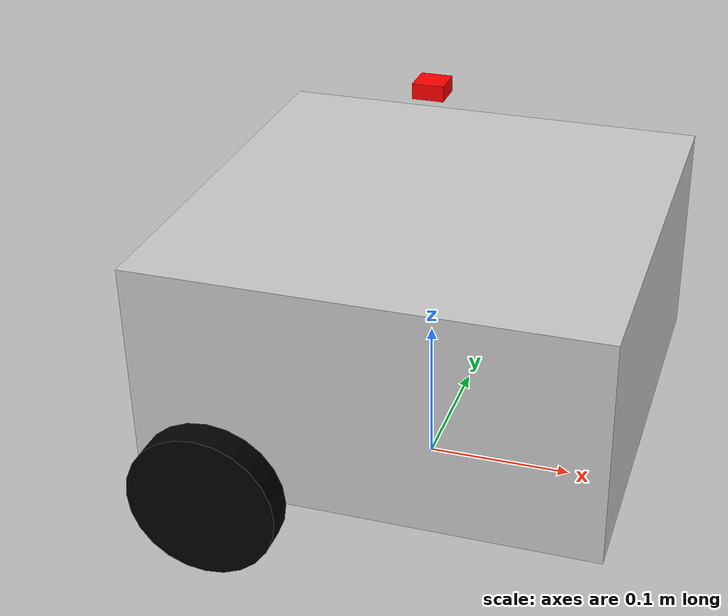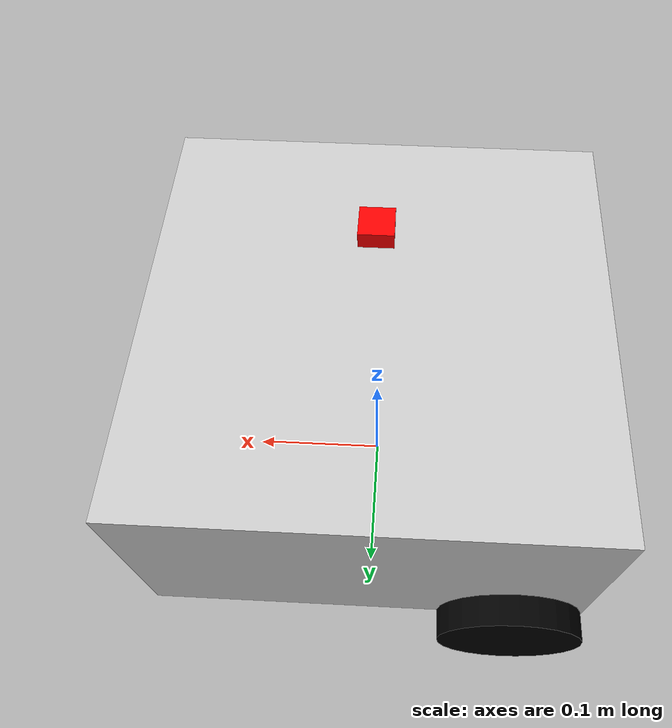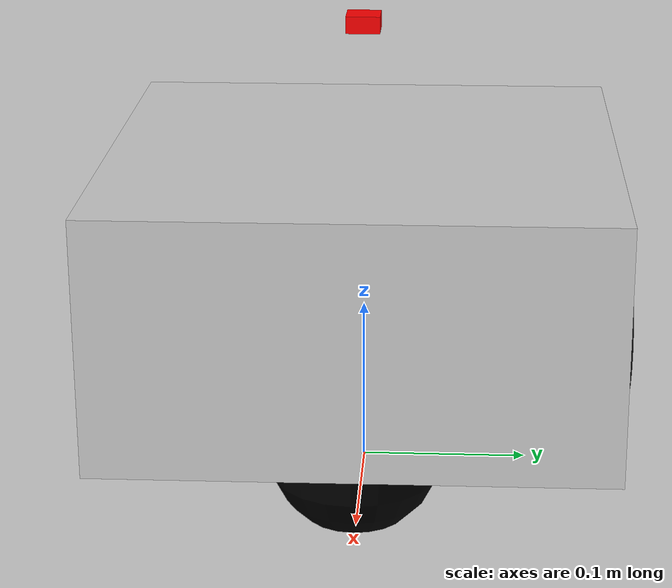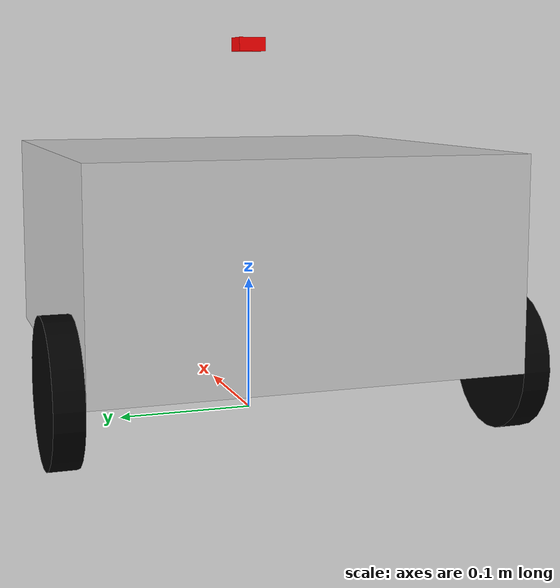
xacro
<?xml version="1.0"?>
<robot xmlns:xacro="http://www.ros.org/wiki/xacro">
    <xacro:include filename="inertial_macros.xacro"/>
    <xacro:include filename="robot_macros.xacro"/>

    <!-- Materials -->
    <material name="black">
        <color rgba="0 0 0 1"/>
    </material>
    <material name="silver">
        <color rgba="0.8 0.8 0.8 1"/>
    </material>
    <material name="red">
        <color rgba="1 0 0 1"/>
    </material>

    <!-- Base link -->

    <link name="base_footprint"/>

    <joint name="base_footprint_joint" type="fixed">
        <parent link="base_footprint"/>
        <child link="base_link"/>
        <origin xyz="0 0 0" rpy="0 0 0"/>
    </joint>

    <link name="base_link"/>

    <!-- Chassis -->
    <joint name="chassis_joint" type="fixed">
        <parent link="base_link"/>
        <child link="chassis"/>
        <origin xyz="0 0 0.125" rpy="0 0 0"/>
    </joint>
    <link name="chassis">
        <visual>
            <origin xyz="0 0 0" rpy="0 0 0"/>
            <geometry>
                <box size="0.3 0.3 0.15"/>
            </geometry>
            <material name="silver"/>
        </visual>
        <collision>
            <origin xyz="0 0 0" rpy="0 0 0"/>
            <geometry>
                <box size="0.3 0.3 0.15"/>
            </geometry>
        </collision>
        <xacro:inertial_box mass="2.5" x="0.3" y="0.3" z="0.15">
            <origin xyz="0 0 0" rpy="0 0 0"/>
        </xacro:inertial_box>
    </link>

    <!-- Wheels (left and right) -->
    <xacro:wheel radius="0.05" width="0.02" mass="0.1" pos="left" origin="-0.1 0.16 -0.075"/>
    <xacro:wheel radius="0.05" width="0.02" mass="0.1" pos="right" origin="-0.1 -0.16 -0.075"/>

    <!-- Optionally, add casters or sensors here -->
    <!-- Caster wheel -->
    <joint name="caster_wheel_joint" type="fixed">
        <parent link="chassis"/>
        <child link="caster_wheel"/>
        <origin xyz="0.1 0 -0.075"/>
    </joint>

    <link name="caster_wheel">
        <visual>
            <geometry>
                <sphere radius="0.05"/>
            </geometry>
            <material name="black"/>
        </visual>
        <collision>
            <geometry>
                <sphere radius="0.05"/>
            </geometry>
        </collision>
        <xacro:inertial_sphere mass="0.1" radius="0.05">
            <origin xyz="0 0 0" rpy="0 0 0"/>
        </xacro:inertial_sphere>
    </link>

    <gazebo reference="caster_wheel">
        <material>Gazebo/White</material>
        <mu1 value="0.001"/>
        <mu2 value="0.001"/>
    </gazebo>

    <joint name="imu_joint" type="fixed">
        <parent link="chassis"/>
        <child link="imu_link"/>
        <origin xyz="0 0 0.15" rpy="0 0 0"/>
    </joint>

    <link name="imu_link">
        <visual>
            <geometry>
                <box size="0.02 0.02 0.01"/>
            </geometry>
            <material name="red"/>
        </visual>
        <collision>
            <geometry>
                <box size="0.02 0.02 0.01"/>
            </geometry>
        </collision>
        <xacro:inertial_box mass="0.01" x="0.02" y="0.02" z="0.01">
            <origin xyz="0 0 0" rpy="0 0 0"/>
        </xacro:inertial_box>
    </link>

    <!-- Ignition Gazebo IMU sensor plugin -->
    <gazebo reference="imu_link">
        <sensor name="imu_sensor" type="imu">
            <always_on>true</always_on>
            <update_rate>100</update_rate>
            <visualize>true</visualize>
            <topic>imu</topic>
            <plugin
                name="ignition::gazebo::systems::Imu"
                filename="libignition-gazebo-imu-system.so">
                <topic>imu</topic>
                <frame_id>imu_link</frame_id>
            </plugin>
        </sensor>
    </gazebo>

</robot>

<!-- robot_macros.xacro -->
<robot xmlns:xacro="http://www.ros.org/wiki/xacro" >
    <xacro:include filename="inertial_macros.xacro"/>
    <xacro:macro name="wheel" params="radius width mass pos origin">

        <joint name="wheel_joint_${pos}" type="continuous">
            <parent link="chassis"/>
            <child link="wheel_${pos}"/>
            <origin xyz="${origin}" rpy="-${pi/2} 0 0"/>
            <axis xyz="0 0 1"/>
        </joint>

        <link name="wheel_${pos}">
            <visual>
                <geometry>
                    <cylinder length="${width}" radius="${radius}"/>
                </geometry>
                <material name = "black"/>
            </visual>
            <collision>
                <geometry>
                    <cylinder length="${width}" radius="${radius}"/>
                </geometry>
            </collision>
            <xacro:inertial_cylinder mass="0.1" length="0.02" radius="0.05">
                <origin xyz = "0 0 0" rpy="0 0 0"/>
            </xacro:inertial_cylinder>
        </link>

        <gazebo reference="wheel_${pos}">
            <material>Gazebo/Black</material>
            <mu1>0.2</mu1>
            <mu2>0.2</mu2>
        </gazebo>
    </xacro:macro>

</robot>
